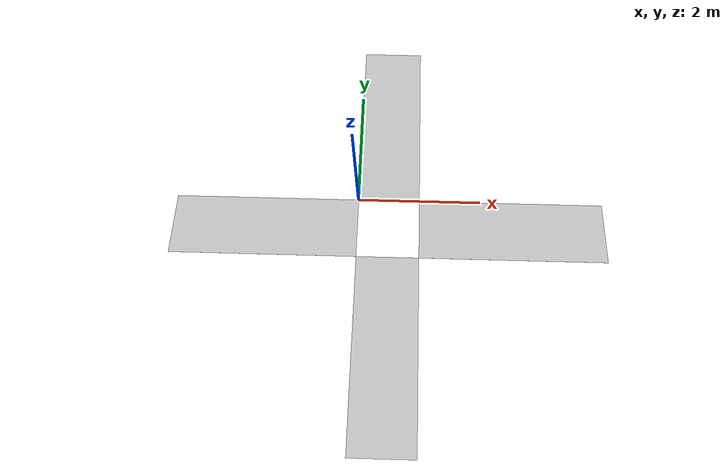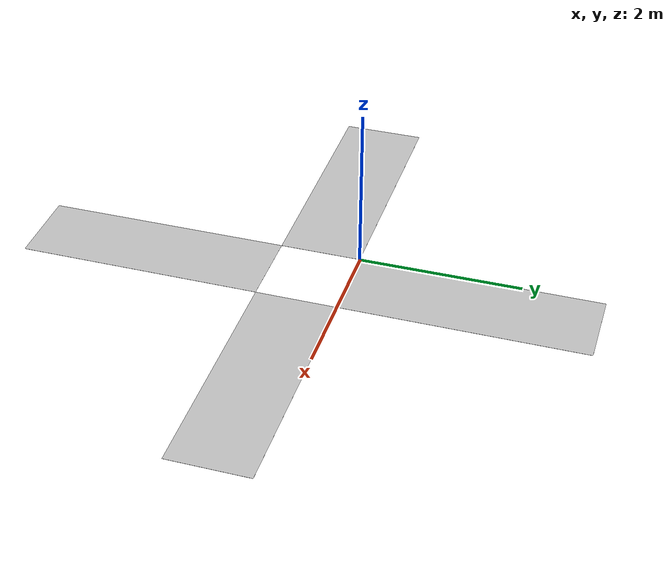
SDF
<sdf version="1.6">
 <world name="default">
  <light name="sun" type="directional">
   <pose>0 0 10 0 -0 0</pose>
   <diffuse>0.8 0.8 0.8 1</diffuse>
   <specular>0.2 0.2 0.2 1</specular>
   <attenuation>
    <range>1000</range>
    <constant>0.9</constant>
    <linear>0.01</linear>
    <quadratic>0.001</quadratic>
   </attenuation>
   <direction>-0.5 0.1 -0.9</direction>
  </light>
  <gravity>0 0 -9.8</gravity>
  <magnetic_field>6e-06 2.3e-05 -4.2e-05</magnetic_field>
  <atmosphere type="adiabatic"/>
  <physics name="default_physics" default="0" type="ode">
   <max_step_size>0.001</max_step_size>
   <real_time_factor>1</real_time_factor>
   <real_time_update_rate>1000</real_time_update_rate>
  </physics>
  <scene><ambient>0.4 0.4 0.4 1</ambient><background>0.7 0.7 0.7 1</background><shadows>1</shadows></scene>
  <audio><device>default</device></audio>
  <spherical_coordinates>
   <surface_model>EARTH_WGS84</surface_model>
   <latitude_deg>0</latitude_deg>
   <longitude_deg>0</longitude_deg>
   <elevation>0</elevation>
   <heading_deg>0</heading_deg>
  </spherical_coordinates>
  <model name="straight_3m">
   <static>1</static>
   <link name="link">
    <collision name="collision">
     <geometry><plane><normal>0 0 1</normal><size>1 3</size></plane></geometry>
     <surface><friction><ode><mu>100</mu><mu2>50</mu2></ode></friction></surface>
    </collision>
    <visual name="visual">
     <cast_shadows>0</cast_shadows>
     <geometry><plane><normal>0 0 1</normal><size>1 3</size></plane></geometry>
     <material>
      <script>
       <uri>model://straight_3m/materials/scripts</uri>
       <uri>model://straight_3m/materials/textures/</uri>
       <name>Straight3m/Image</name>
      </script>
     </material>
    </visual>
   </link>
   <pose>2.5 -0.5 0 0 -0 1.5707</pose>
  </model>
  <model name="straight_3m_0">
   <static>1</static>
   <link name="link">
    <collision name="collision">
     <geometry><plane><normal>0 0 1</normal><size>1 3</size></plane></geometry>
     <surface><friction><ode><mu>100</mu><mu2>50</mu2></ode></friction></surface>
    </collision>
    <visual name="visual">
     <cast_shadows>0</cast_shadows>
     <geometry><plane><normal>0 0 1</normal><size>1 3</size></plane></geometry>
     <material>
      <script>
       <uri>model://straight_3m/materials/scripts</uri>
       <uri>model://straight_3m/materials/textures/</uri>
       <name>Straight3m/Image</name>
      </script>
     </material>
    </visual>
   </link>
   <pose>0.5 1.5 0 0 -0 0</pose>
  </model>
  <model name="straight_3m_1">
   <static>1</static>
   <link name="link">
    <collision name="collision">
     <geometry><plane><normal>0 0 1</normal><size>1 3</size></plane></geometry>
     <surface><friction><ode><mu>100</mu><mu2>50</mu2></ode></friction></surface>
    </collision>
    <visual name="visual">
     <cast_shadows>0</cast_shadows>
     <geometry><plane><normal>0 0 1</normal><size>1 3</size></plane></geometry>
     <material>
      <script>
       <uri>model://straight_3m/materials/scripts</uri>
       <uri>model://straight_3m/materials/textures/</uri>
       <name>Straight3m/Image</name>
      </script>
     </material>
    </visual>
   </link>
   <pose>0.5 -2.5 0 0 -0 0</pose>
  </model>
  <model name="straight_3m_2">
   <static>1</static>
   <link name="link">
    <collision name="collision">
     <geometry><plane><normal>0 0 1</normal><size>1 3</size></plane></geometry>
     <surface><friction><ode><mu>100</mu><mu2>50</mu2></ode></friction></surface>
    </collision>
    <visual name="visual">
     <cast_shadows>0</cast_shadows>
     <geometry><plane><normal>0 0 1</normal><size>1 3</size></plane></geometry>
     <material>
      <script>
       <uri>model://straight_3m/materials/scripts</uri>
       <uri>model://straight_3m/materials/textures/</uri>
       <name>Straight3m/Image</name>
      </script>
     </material>
    </visual>
   </link>
   <pose>-1.5 -0.5 0 0 -0 1.5707</pose>
  </model>
 </world>
</sdf>
